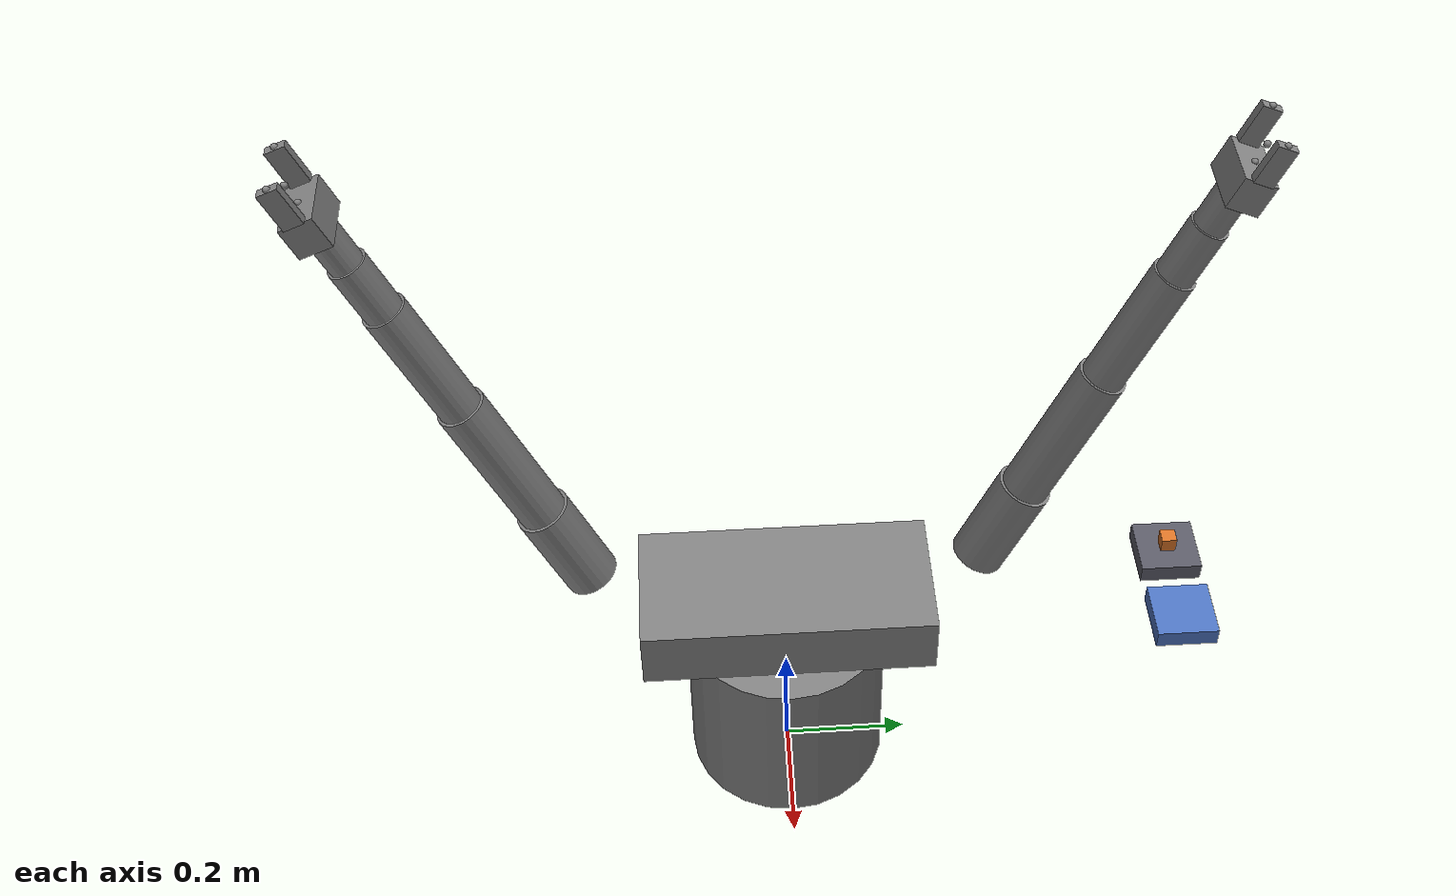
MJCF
<mujoco model="zoo_dual_arm">
  <compiler angle="radian" meshdir="C:\Users\hocke\GitHub\rigby-g06\any-robot\assets\general\zoo\zoo_dual_arm" texturedir="C:\Users\hocke\GitHub\rigby-g06\any-robot\assets\general\zoo\zoo_dual_arm" />

  <worldbody>
    <body name="base">
      <inertial pos="0 0 0.15" mass="22" diaginertia="0.3058 0.3058 0.2816" />
      <geom size="0.16 0.15" pos="0 0 0.15" type="cylinder" />
      <site name="robot_base" pos="0 0 0" />
      <body name="torso" pos="0 0 0.3">
        <inertial pos="0 0 0.05" quat="0.5 0.5 -0.5 0.5" mass="7" diaginertia="0.151667 0.129267 0.0340667" />
        <geom size="0.11 0.23 0.05" pos="0 0 0.05" type="box" />
        <body name="left_link_0" pos="0 0.3 0.14" quat="0.980067 -0.198669 0 0">
          <inertial pos="0 0 0.08" mass="0.798015" diaginertia="0.00205436 0.00205436 0.00070385" />
          <joint name="left_joint_0" pos="0 0 0" axis="0 0 1" range="-2.85 2.85" actuatorfrcrange="-95 95" />
          <geom size="0.042 0.08" pos="0 0 0.08" type="cylinder" />
          <body name="left_link_1" pos="0 0 0.16">
            <inertial pos="0 0 0.12" mass="0.926974" diaginertia="0.00476605 0.00476605 0.00063314" />
            <joint name="left_joint_1" pos="0 0 0" axis="0 1 0" range="-2.85 2.85" actuatorfrcrange="-95 95" />
            <geom size="0.03696 0.12" pos="0 0 0.12" type="cylinder" />
            <body name="left_link_2" pos="0 0 0.24">
              <inertial pos="0 0 0.1" mass="0.598207" diaginertia="0.00215223 0.00215223 0.00031641" />
              <joint name="left_joint_2" pos="0 0 0" axis="0 1 0" range="-2.85 2.85" actuatorfrcrange="-95 95" />
              <geom size="0.032525 0.1" pos="0 0 0.1" type="cylinder" />
              <body name="left_link_3" pos="0 0 0.2">
                <inertial pos="0 0 0.045" mass="0.25" diaginertia="0.00021995 0.00021995 0.0001024" />
                <joint name="left_joint_3" pos="0 0 0" axis="0 0 1" range="-2.85 2.85" actuatorfrcrange="-95 95" />
                <geom size="0.028622 0.045" pos="0 0 0.045" type="cylinder" />
                <body name="left_link_4" pos="0 0 0.09">
                  <inertial pos="0 0 0.03" mass="0.25" diaginertia="0.00011465 0.00011465 7.93e-05" />
                  <joint name="left_joint_4" pos="0 0 0" axis="0 1 0" range="-2.85 2.85" actuatorfrcrange="-95 95" />
                  <geom size="0.025187 0.03" pos="0 0 0.03" type="cylinder" />
                  <body name="left_palm" pos="0 0 0.06">
                    <inertial pos="0 0 0.025" quat="0.5 0.5 0.5 0.5" mass="0.35" diaginertia="0.00030917 0.00030917 0.00014583" />
                    <geom size="0.045 0.025 0.025" pos="0 0 0.025" type="box" />
                    <site name="left_palm_grasp_point" pos="0 0 0.08" />
                    <site name="left_palm_grasp_center" pos="0 0 0.05" />
                    <site name="left_palm_wrist" pos="0 0 0" />
                    <body name="left_finger_left" pos="0.043 0 0.05">
                      <inertial pos="0 0 0.03" mass="0.06" diaginertia="2.25e-05 1.898e-05 5.48e-06" />
                      <joint name="left_grip_left" pos="0 0 0" axis="-1 0 0" type="slide" range="0 0.035" actuatorfrcrange="-45 45" />
                      <geom size="0.007 0.015 0.03" pos="0 0 0.03" type="box" />
                      <site name="left_palm_tip" pos="0 0 0.06" />
                      <site name="left_palm_contact_0" pos="0 0 0.06" />
                    </body>
                    <body name="left_finger_right" pos="-0.043 0 0.05">
                      <inertial pos="0 0 0.03" mass="0.06" diaginertia="2.25e-05 1.898e-05 5.48e-06" />
                      <joint name="left_grip_right" pos="0 0 0" axis="1 0 0" type="slide" range="0 0.035" actuatorfrcrange="-45 45" />
                      <geom size="0.007 0.015 0.03" pos="0 0 0.03" type="box" />
                      <site name="left_palm_contact_1" pos="0 0 0.06" />
                    </body>
                  </body>
                </body>
              </body>
            </body>
          </body>
        </body>
        <body name="right_link_0" pos="0 -0.3 0.14" quat="0.980067 0.198669 0 0">
          <inertial pos="0 0 0.08" mass="0.798015" diaginertia="0.00205436 0.00205436 0.00070385" />
          <joint name="right_joint_0" pos="0 0 0" axis="0 0 1" range="-2.85 2.85" actuatorfrcrange="-95 95" />
          <geom size="0.042 0.08" pos="0 0 0.08" type="cylinder" />
          <body name="right_link_1" pos="0 0 0.16">
            <inertial pos="0 0 0.12" mass="0.926974" diaginertia="0.00476605 0.00476605 0.00063314" />
            <joint name="right_joint_1" pos="0 0 0" axis="0 1 0" range="-2.85 2.85" actuatorfrcrange="-95 95" />
            <geom size="0.03696 0.12" pos="0 0 0.12" type="cylinder" />
            <body name="right_link_2" pos="0 0 0.24">
              <inertial pos="0 0 0.1" mass="0.598207" diaginertia="0.00215223 0.00215223 0.00031641" />
              <joint name="right_joint_2" pos="0 0 0" axis="0 1 0" range="-2.85 2.85" actuatorfrcrange="-95 95" />
              <geom size="0.032525 0.1" pos="0 0 0.1" type="cylinder" />
              <body name="right_link_3" pos="0 0 0.2">
                <inertial pos="0 0 0.045" mass="0.25" diaginertia="0.00021995 0.00021995 0.0001024" />
                <joint name="right_joint_3" pos="0 0 0" axis="0 0 1" range="-2.85 2.85" actuatorfrcrange="-95 95" />
                <geom size="0.028622 0.045" pos="0 0 0.045" type="cylinder" />
                <body name="right_link_4" pos="0 0 0.09">
                  <inertial pos="0 0 0.03" mass="0.25" diaginertia="0.00011465 0.00011465 7.93e-05" />
                  <joint name="right_joint_4" pos="0 0 0" axis="0 1 0" range="-2.85 2.85" actuatorfrcrange="-95 95" />
                  <geom size="0.025187 0.03" pos="0 0 0.03" type="cylinder" />
                  <body name="right_palm" pos="0 0 0.06">
                    <inertial pos="0 0 0.025" quat="0.5 0.5 0.5 0.5" mass="0.35" diaginertia="0.00030917 0.00030917 0.00014583" />
                    <geom size="0.045 0.025 0.025" pos="0 0 0.025" type="box" />
                    <site name="right_palm_grasp_point" pos="0 0 0.08" />
                    <site name="right_palm_grasp_center" pos="0 0 0.05" />
                    <site name="right_palm_wrist" pos="0 0 0" />
                    <body name="right_finger_left" pos="0.043 0 0.05">
                      <inertial pos="0 0 0.03" mass="0.06" diaginertia="2.25e-05 1.898e-05 5.48e-06" />
                      <joint name="right_grip_left" pos="0 0 0" axis="-1 0 0" type="slide" range="0 0.035" actuatorfrcrange="-45 45" />
                      <geom size="0.007 0.015 0.03" pos="0 0 0.03" type="box" />
                      <site name="right_palm_tip" pos="0 0 0.06" />
                      <site name="right_palm_contact_0" pos="0 0 0.06" />
                    </body>
                    <body name="right_finger_right" pos="-0.043 0 0.05">
                      <inertial pos="0 0 0.03" mass="0.06" diaginertia="2.25e-05 1.898e-05 5.48e-06" />
                      <joint name="right_grip_right" pos="0 0 0" axis="1 0 0" type="slide" range="0 0.035" actuatorfrcrange="-45 45" />
                      <geom size="0.007 0.015 0.03" pos="0 0 0.03" type="box" />
                      <site name="right_palm_contact_1" pos="0 0 0.06" />
                    </body>
                  </body>
                </body>
              </body>
            </body>
          </body>
        </body>
      </body>
    </body>
  <body name="env_fixture_bench" pos="-0.150711 0.653079 0.246161"><geom name="env_fixture_bench_geom" type="box" size="0.050237 0.050237 0.015071" rgba="0.3500 0.3500 0.4000 1.0000" solref="0.002 1" solimp="0.95 0.99 0.001" /></body><body name="env_fixture_platform" pos="-0.010047 0.653079 0.246161"><geom name="env_fixture_platform_geom" type="box" size="0.050237 0.050237 0.015071" rgba="0.3000 0.4500 0.7500 1.0000" solref="0.002 1" solimp="0.95 0.99 0.001" /></body><body name="scene_block" pos="-0.150711 0.653079 0.273645"><freejoint name="scene_block_free" /><geom name="scene_block_geom" type="box" size="0.012414 0.012414 0.012414" mass="0.004897" friction="1.400 0.03 0.001" rgba="0.8500 0.4500 0.1500 1.0000" condim="4" solref="0.002 1" solimp="0.95 0.99 0.001" priority="1" /><site name="scene_block_center" pos="0 0 0" size="0.002" /></body></worldbody>

  <actuator>
    <general name="left_joint_0_motor" joint="left_joint_0" ctrllimited="true" ctrlrange="-95 95" forcelimited="true" forcerange="-95 95" />
    <general name="left_joint_1_motor" joint="left_joint_1" ctrllimited="true" ctrlrange="-95 95" forcelimited="true" forcerange="-95 95" />
    <general name="left_joint_2_motor" joint="left_joint_2" ctrllimited="true" ctrlrange="-95 95" forcelimited="true" forcerange="-95 95" />
    <general name="left_joint_3_motor" joint="left_joint_3" ctrllimited="true" ctrlrange="-95 95" forcelimited="true" forcerange="-95 95" />
    <general name="left_joint_4_motor" joint="left_joint_4" ctrllimited="true" ctrlrange="-95 95" forcelimited="true" forcerange="-95 95" />
    <general name="left_grip_left_motor" joint="left_grip_left" ctrllimited="true" ctrlrange="-45 45" forcelimited="true" forcerange="-45 45" />
    <general name="left_grip_right_motor" joint="left_grip_right" ctrllimited="true" ctrlrange="-45 45" forcelimited="true" forcerange="-45 45" />
    <general name="right_joint_0_motor" joint="right_joint_0" ctrllimited="true" ctrlrange="-95 95" forcelimited="true" forcerange="-95 95" />
    <general name="right_joint_1_motor" joint="right_joint_1" ctrllimited="true" ctrlrange="-95 95" forcelimited="true" forcerange="-95 95" />
    <general name="right_joint_2_motor" joint="right_joint_2" ctrllimited="true" ctrlrange="-95 95" forcelimited="true" forcerange="-95 95" />
    <general name="right_joint_3_motor" joint="right_joint_3" ctrllimited="true" ctrlrange="-95 95" forcelimited="true" forcerange="-95 95" />
    <general name="right_joint_4_motor" joint="right_joint_4" ctrllimited="true" ctrlrange="-95 95" forcelimited="true" forcerange="-95 95" />
    <general name="right_grip_left_motor" joint="right_grip_left" ctrllimited="true" ctrlrange="-45 45" forcelimited="true" forcerange="-45 45" />
    <general name="right_grip_right_motor" joint="right_grip_right" ctrllimited="true" ctrlrange="-45 45" forcelimited="true" forcerange="-45 45" />
  </actuator>
</mujoco>
